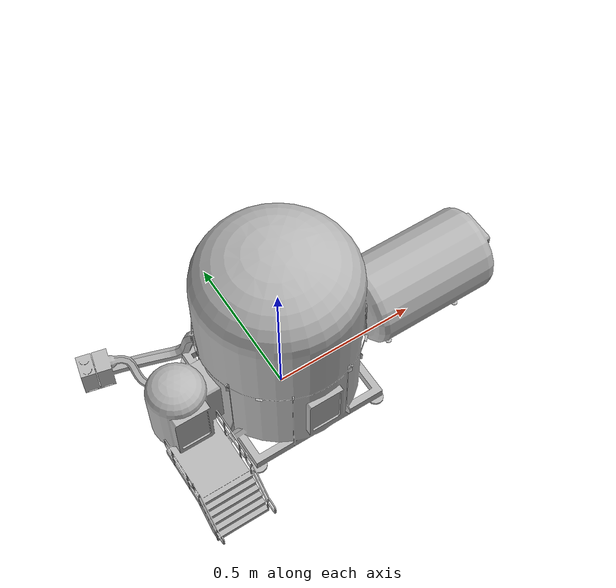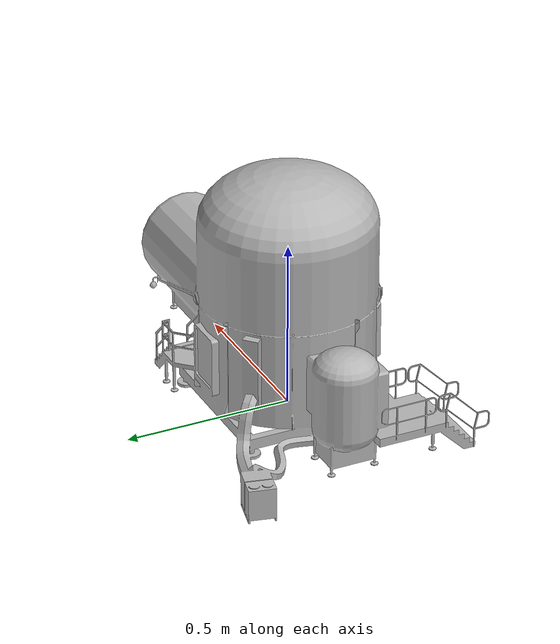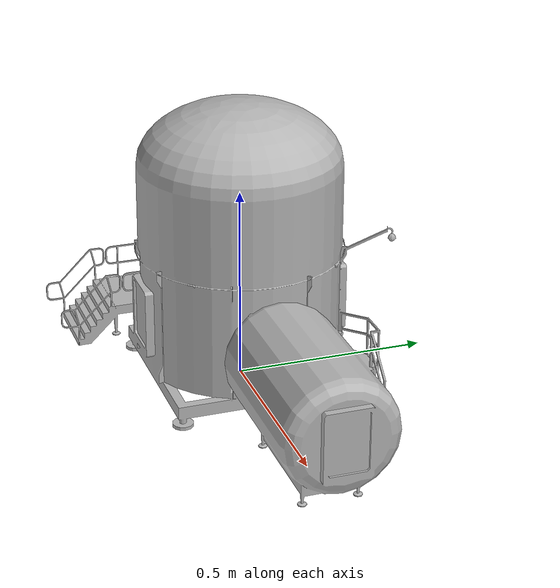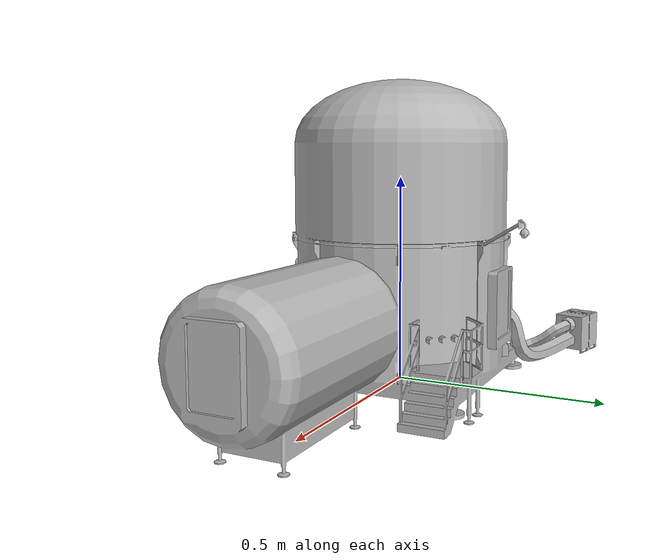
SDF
<?xml version="1.0" ?>
<sdf version="1.6">
  <model name="src_habitat">
    <link name="link">
      <collision name="collision">
        <pose>0 0 0 0 0 0</pose>
        <geometry>
          <mesh>
            <uri>model://src_habitat/meshes/hdu.dae</uri>
          </mesh>
        </geometry>
      </collision>
      <visual name="visual">
        <pose>0 0 0 0 0 0</pose>
        <geometry>
          <mesh>
            <uri>model://src_habitat/meshes/hdu.dae</uri>
          </mesh>
        </geometry>
      </visual>
    </link>
  </model>
</sdf>
